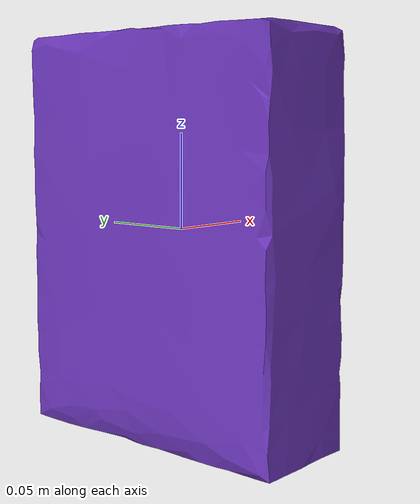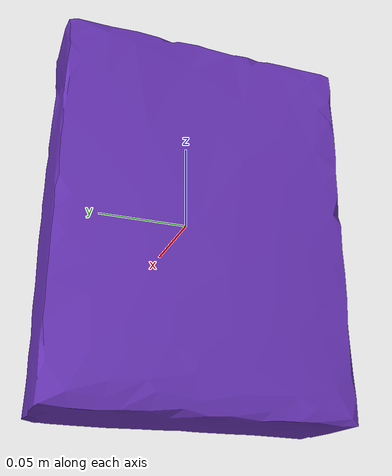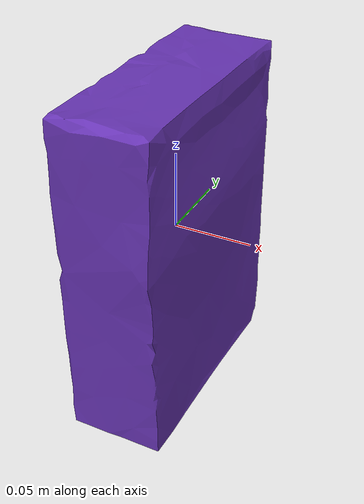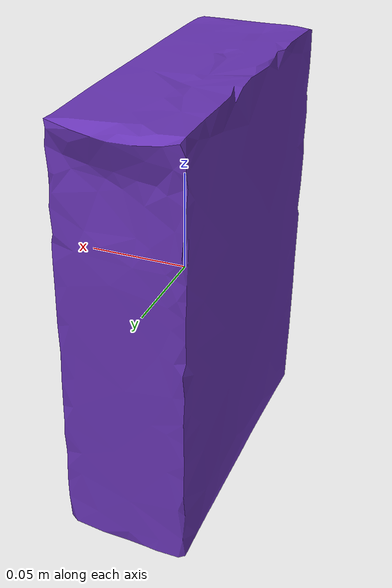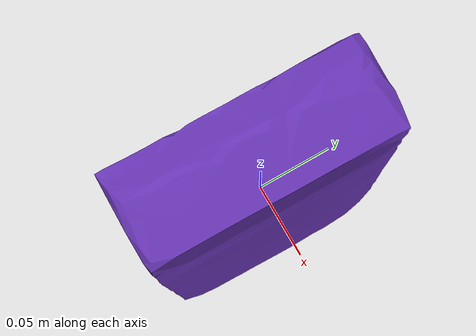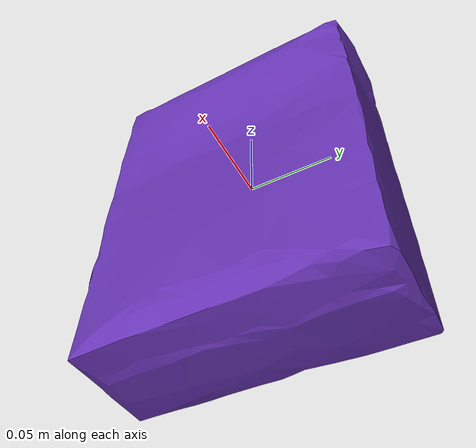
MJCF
<mujoco model="top_watertight_tiny">

  <asset>
    <mesh file="top_watertight_tiny.obj"/>
    <mesh file="top_watertight_tiny_collision_0.obj"/>
    <mesh file="top_watertight_tiny_collision_1.obj"/>
  </asset>
  <worldbody>
    <body name="top_watertight_tiny">
      <freejoint/>
      <geom solimp="0.90 0.95 0.001" solref="0.02 1.0" density="100" friction="0.95 0.4 0.3" rgba="0.4 0.2 0.7 1" mesh="top_watertight_tiny" group="2" type="mesh" contype="0" conaffinity="0"/>
      <geom solimp="0.90 0.95 0.001" solref="0.02 1.0" density="100" friction="0.95 0.4 0.3" mesh="top_watertight_tiny_collision_0" rgba="0.39023330086658603 0.9265028592034734 0.18881073457002995 1" group="3" type="mesh"/>
      <geom solimp="0.90 0.95 0.001" solref="0.02 1.0" density="100" friction="0.95 0.4 0.3" mesh="top_watertight_tiny_collision_1" rgba="0.2628012214952792 0.06617144268248687 0.06398900086380044 1" group="3" type="mesh"/>
    </body>
  </worldbody>
</mujoco>
